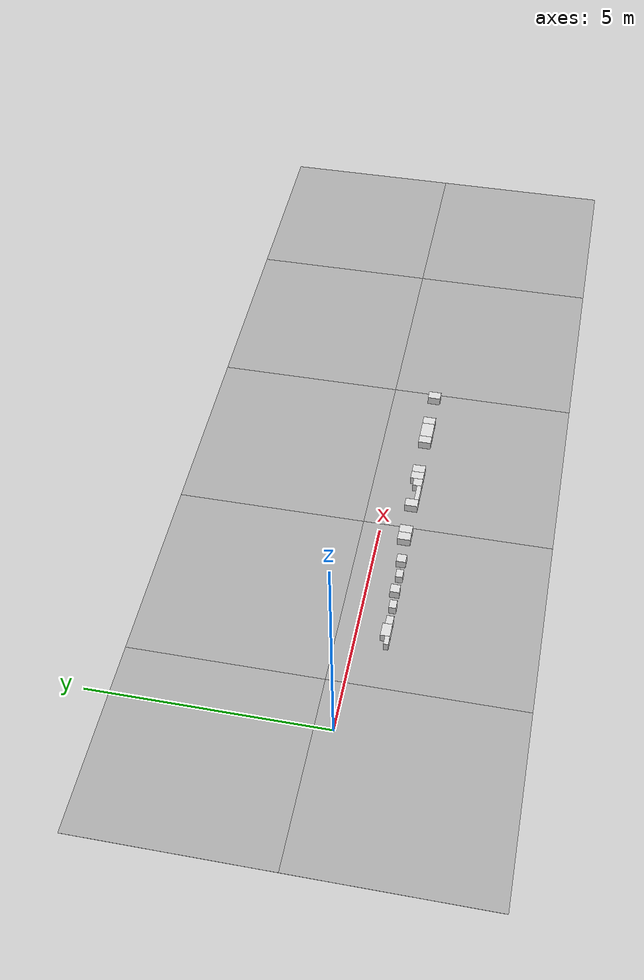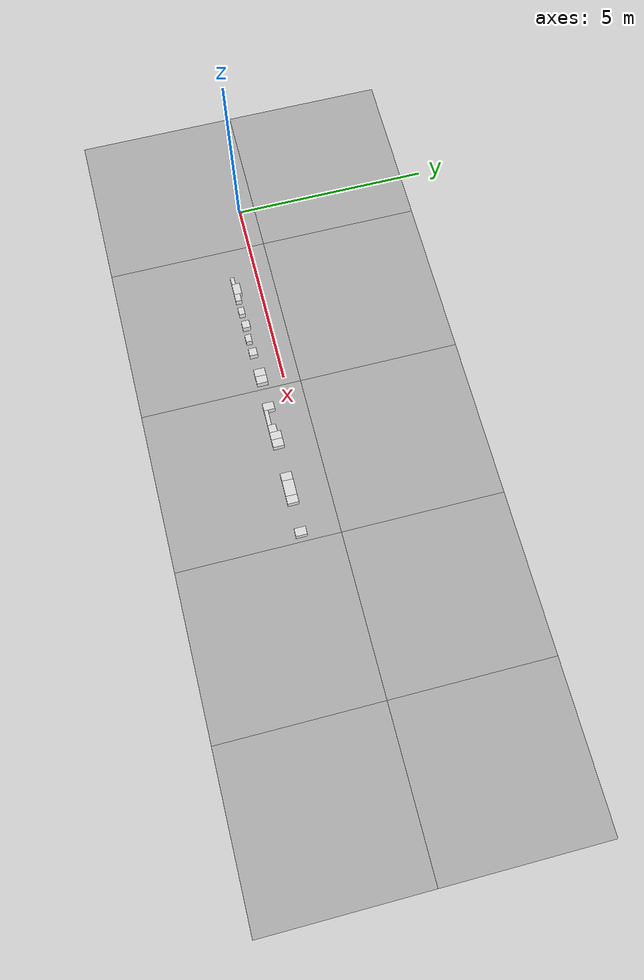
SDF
<sdf version="1.6">
 <world name="default">
  <model name="Tile/0-0">
   <static>1</static>
   <link name="link">
    <collision name="collision">
     <geometry><plane><normal>0 0 1</normal><size>4.096 4.096</size></plane></geometry>
     <surface><friction><ode><mu>100</mu><mu2>50</mu2></ode></friction></surface>
    </collision>
    <visual name="visual">
     <cast_shadows>0</cast_shadows>
     <geometry><plane><normal>0 0 1</normal><size>4.096 4.096</size></plane></geometry>
     <material>
      <script>
       <uri>file://materials/scripts</uri>
       <uri>file://materials/textures</uri>
       <name>Tile/aa44efc093d15b0d016b671cb8dad8b9b5925cd42bc6b331ef31decf4ba6863e</name>
      </script>
     </material>
    </visual>
   </link>
   <pose>-0.952 -1.6520000000000001 0 0 -0 0</pose>
  </model>
  <model name="Tile/0-1">
   <static>1</static>
   <link name="link">
    <collision name="collision">
     <geometry><plane><normal>0 0 1</normal><size>4.096 4.096</size></plane></geometry>
     <surface><friction><ode><mu>100</mu><mu2>50</mu2></ode></friction></surface>
    </collision>
    <visual name="visual">
     <cast_shadows>0</cast_shadows>
     <geometry><plane><normal>0 0 1</normal><size>4.096 4.096</size></plane></geometry>
     <material>
      <script>
       <uri>file://materials/scripts</uri>
       <uri>file://materials/textures</uri>
       <name>Tile/6681b896b1587d54cb69aadeb5fb7247b4d6d500490292053e67105ac88ca889</name>
      </script>
     </material>
    </visual>
   </link>
   <pose>-0.952 2.444 0 0 -0 0</pose>
  </model>
  <model name="Tile/1-0">
   <static>1</static>
   <link name="link">
    <collision name="collision">
     <geometry><plane><normal>0 0 1</normal><size>4.096 4.096</size></plane></geometry>
     <surface><friction><ode><mu>100</mu><mu2>50</mu2></ode></friction></surface>
    </collision>
    <visual name="visual">
     <cast_shadows>0</cast_shadows>
     <geometry><plane><normal>0 0 1</normal><size>4.096 4.096</size></plane></geometry>
     <material>
      <script>
       <uri>file://materials/scripts</uri>
       <uri>file://materials/textures</uri>
       <name>Tile/211000c55949827c1dbe08ef776d847ae6367f50a730efac53dbd94fc0bb5fd0</name>
      </script>
     </material>
    </visual>
   </link>
   <pose>3.144 -1.6520000000000001 0 0 -0 0</pose>
  </model>
  <model name="Tile/1-1">
   <static>1</static>
   <link name="link">
    <collision name="collision">
     <geometry><plane><normal>0 0 1</normal><size>4.096 4.096</size></plane></geometry>
     <surface><friction><ode><mu>100</mu><mu2>50</mu2></ode></friction></surface>
    </collision>
    <visual name="visual">
     <cast_shadows>0</cast_shadows>
     <geometry><plane><normal>0 0 1</normal><size>4.096 4.096</size></plane></geometry>
     <material>
      <script>
       <uri>file://materials/scripts</uri>
       <uri>file://materials/textures</uri>
       <name>Tile/13957a6de1f2afce18d7f1f64dacc2f21295e26ccf498256b0e1a51002cd5706</name>
      </script>
     </material>
    </visual>
   </link>
   <pose>3.144 2.444 0 0 -0 0</pose>
  </model>
  <model name="Tile/2-0">
   <static>1</static>
   <link name="link">
    <collision name="collision">
     <geometry><plane><normal>0 0 1</normal><size>4.096 4.096</size></plane></geometry>
     <surface><friction><ode><mu>100</mu><mu2>50</mu2></ode></friction></surface>
    </collision>
    <visual name="visual">
     <cast_shadows>0</cast_shadows>
     <geometry><plane><normal>0 0 1</normal><size>4.096 4.096</size></plane></geometry>
     <material>
      <script>
       <uri>file://materials/scripts</uri>
       <uri>file://materials/textures</uri>
       <name>Tile/14c6997e4ef2e1361540db81ecadd47c81aeaf3bcaa944e50438827b7d5f5a1a</name>
      </script>
     </material>
    </visual>
   </link>
   <pose>7.24 -1.6520000000000001 0 0 -0 0</pose>
  </model>
  <model name="Tile/2-1">
   <static>1</static>
   <link name="link">
    <collision name="collision">
     <geometry><plane><normal>0 0 1</normal><size>4.096 4.096</size></plane></geometry>
     <surface><friction><ode><mu>100</mu><mu2>50</mu2></ode></friction></surface>
    </collision>
    <visual name="visual">
     <cast_shadows>0</cast_shadows>
     <geometry><plane><normal>0 0 1</normal><size>4.096 4.096</size></plane></geometry>
     <material>
      <script>
       <uri>file://materials/scripts</uri>
       <uri>file://materials/textures</uri>
       <name>Tile/13957a6de1f2afce18d7f1f64dacc2f21295e26ccf498256b0e1a51002cd5706</name>
      </script>
     </material>
    </visual>
   </link>
   <pose>7.24 2.444 0 0 -0 0</pose>
  </model>
  <model name="Tile/3-0">
   <static>1</static>
   <link name="link">
    <collision name="collision">
     <geometry><plane><normal>0 0 1</normal><size>4.096 4.096</size></plane></geometry>
     <surface><friction><ode><mu>100</mu><mu2>50</mu2></ode></friction></surface>
    </collision>
    <visual name="visual">
     <cast_shadows>0</cast_shadows>
     <geometry><plane><normal>0 0 1</normal><size>4.096 4.096</size></plane></geometry>
     <material>
      <script>
       <uri>file://materials/scripts</uri>
       <uri>file://materials/textures</uri>
       <name>Tile/5b4b2667aebdeabff7465a80aab668c68c7da6f92cf121cc6637428caa494271</name>
      </script>
     </material>
    </visual>
   </link>
   <pose>11.336 -1.6520000000000001 0 0 -0 0</pose>
  </model>
  <model name="Tile/3-1">
   <static>1</static>
   <link name="link">
    <collision name="collision">
     <geometry><plane><normal>0 0 1</normal><size>4.096 4.096</size></plane></geometry>
     <surface><friction><ode><mu>100</mu><mu2>50</mu2></ode></friction></surface>
    </collision>
    <visual name="visual">
     <cast_shadows>0</cast_shadows>
     <geometry><plane><normal>0 0 1</normal><size>4.096 4.096</size></plane></geometry>
     <material>
      <script>
       <uri>file://materials/scripts</uri>
       <uri>file://materials/textures</uri>
       <name>Tile/6765d09d4b84ba0dc5b003d615d35327976c0d136b5748911226ea48ef82a4c5</name>
      </script>
     </material>
    </visual>
   </link>
   <pose>11.336 2.444 0 0 -0 0</pose>
  </model>
  <model name="Tile/4-0">
   <static>1</static>
   <link name="link">
    <collision name="collision">
     <geometry><plane><normal>0 0 1</normal><size>4.096 4.096</size></plane></geometry>
     <surface><friction><ode><mu>100</mu><mu2>50</mu2></ode></friction></surface>
    </collision>
    <visual name="visual">
     <cast_shadows>0</cast_shadows>
     <geometry><plane><normal>0 0 1</normal><size>4.096 4.096</size></plane></geometry>
     <material>
      <script>
       <uri>file://materials/scripts</uri>
       <uri>file://materials/textures</uri>
       <name>Tile/5eab350b8220ac9944dbdfa4ac3288c7c17e24c3bf5df0dfcf6173d64dae00a1</name>
      </script>
     </material>
    </visual>
   </link>
   <pose>15.431999999999999 -1.6520000000000001 0 0 -0 0</pose>
  </model>
  <model name="Tile/4-1">
   <static>1</static>
   <link name="link">
    <collision name="collision">
     <geometry><plane><normal>0 0 1</normal><size>4.096 4.096</size></plane></geometry>
     <surface><friction><ode><mu>100</mu><mu2>50</mu2></ode></friction></surface>
    </collision>
    <visual name="visual">
     <cast_shadows>0</cast_shadows>
     <geometry><plane><normal>0 0 1</normal><size>4.096 4.096</size></plane></geometry>
     <material>
      <script>
       <uri>file://materials/scripts</uri>
       <uri>file://materials/textures</uri>
       <name>Tile/5eab350b8220ac9944dbdfa4ac3288c7c17e24c3bf5df0dfcf6173d64dae00a1</name>
      </script>
     </material>
    </visual>
   </link>
   <pose>15.431999999999999 2.444 0 0 -0 0</pose>
  </model>
  <model name="Obstacle/-5/0">
   <pose>2.1 -0.6499999999999999 0.1 0 0 -0.0</pose>
   <link name="link">
    <inertial>
     <mass>10</mass>
     <inertia>
      <ixx>0.166667</ixx>
      <ixy>0</ixy>
      <ixz>0</ixz>
      <iyy>0.166667</iyy>
      <iyz>0</iyz>
      <izz>0.166667</izz>
     </inertia>
    </inertial>
    <collision name="collision"><geometry><box><size>0.2 0.1 0.2</size></box></geometry></collision>
    <visual name="visual">
     <geometry><box><size>0.2 0.1 0.2</size></box></geometry>
     <material>
      <script><name>Gazebo/White</name><uri>file://media/materials/scripts/gazebo.material</uri></script>
     </material>
    </visual>
   </link>
  </model>
  <model name="Obstacle/-9/0">
   <pose>2.35 -0.6 0.1 0 0 -0.0</pose>
   <link name="link">
    <inertial>
     <mass>10</mass>
     <inertia>
      <ixx>0.166667</ixx>
      <ixy>0</ixy>
      <ixz>0</ixz>
      <iyy>0.166667</iyy>
      <iyz>0</iyz>
      <izz>0.166667</izz>
     </inertia>
    </inertial>
    <collision name="collision"><geometry><box><size>0.3 0.2 0.2</size></box></geometry></collision>
    <visual name="visual">
     <geometry><box><size>0.3 0.2 0.2</size></box></geometry>
     <material>
      <script><name>Gazebo/White</name><uri>file://media/materials/scripts/gazebo.material</uri></script>
     </material>
    </visual>
   </link>
  </model>
  <model name="Obstacle/-13/0">
   <pose>2.6 -0.625 0.1 0 0 -0.0</pose>
   <link name="link">
    <inertial>
     <mass>10</mass>
     <inertia>
      <ixx>0.166667</ixx>
      <ixy>0</ixy>
      <ixz>0</ixz>
      <iyy>0.166667</iyy>
      <iyz>0</iyz>
      <izz>0.166667</izz>
     </inertia>
    </inertial>
    <collision name="collision"><geometry><box><size>0.2 0.15 0.2</size></box></geometry></collision>
    <visual name="visual">
     <geometry><box><size>0.2 0.15 0.2</size></box></geometry>
     <material>
      <script><name>Gazebo/White</name><uri>file://media/materials/scripts/gazebo.material</uri></script>
     </material>
    </visual>
   </link>
  </model>
  <model name="Obstacle/-20/0">
   <pose>3.0000000000000004 -0.625 0.1 0 0 -0.0</pose>
   <link name="link">
    <inertial>
     <mass>10</mass>
     <inertia>
      <ixx>0.166667</ixx>
      <ixy>0</ixy>
      <ixz>0</ixz>
      <iyy>0.166667</iyy>
      <iyz>0</iyz>
      <izz>0.166667</izz>
     </inertia>
    </inertial>
    <collision name="collision"><geometry><box><size>0.2 0.15 0.2</size></box></geometry></collision>
    <visual name="visual">
     <geometry><box><size>0.2 0.15 0.2</size></box></geometry>
     <material>
      <script><name>Gazebo/White</name><uri>file://media/materials/scripts/gazebo.material</uri></script>
     </material>
    </visual>
   </link>
  </model>
  <model name="Obstacle/-27/0">
   <pose>3.400000000000001 -0.6 0.1 0 0 -0.0</pose>
   <link name="link">
    <inertial>
     <mass>10</mass>
     <inertia>
      <ixx>0.166667</ixx>
      <ixy>0</ixy>
      <ixz>0</ixz>
      <iyy>0.166667</iyy>
      <iyz>0</iyz>
      <izz>0.166667</izz>
     </inertia>
    </inertial>
    <collision name="collision"><geometry><box><size>0.2 0.2 0.2</size></box></geometry></collision>
    <visual name="visual">
     <geometry><box><size>0.2 0.2 0.2</size></box></geometry>
     <material>
      <script><name>Gazebo/White</name><uri>file://media/materials/scripts/gazebo.material</uri></script>
     </material>
    </visual>
   </link>
  </model>
  <model name="Obstacle/-34/0">
   <pose>3.800000000000001 -0.625 0.1 0 0 -0.0</pose>
   <link name="link">
    <inertial>
     <mass>10</mass>
     <inertia>
      <ixx>0.166667</ixx>
      <ixy>0</ixy>
      <ixz>0</ixz>
      <iyy>0.166667</iyy>
      <iyz>0</iyz>
      <izz>0.166667</izz>
     </inertia>
    </inertial>
    <collision name="collision"><geometry><box><size>0.2 0.15 0.2</size></box></geometry></collision>
    <visual name="visual">
     <geometry><box><size>0.2 0.15 0.2</size></box></geometry>
     <material>
      <script><name>Gazebo/White</name><uri>file://media/materials/scripts/gazebo.material</uri></script>
     </material>
    </visual>
   </link>
  </model>
  <model name="Obstacle/-41/0">
   <pose>4.200000000000001 -0.6 0.1 0 0 -0.0</pose>
   <link name="link">
    <inertial>
     <mass>10</mass>
     <inertia>
      <ixx>0.166667</ixx>
      <ixy>0</ixy>
      <ixz>0</ixz>
      <iyy>0.166667</iyy>
      <iyz>0</iyz>
      <izz>0.166667</izz>
     </inertia>
    </inertial>
    <collision name="collision"><geometry><box><size>0.2 0.2 0.2</size></box></geometry></collision>
    <visual name="visual">
     <geometry><box><size>0.2 0.2 0.2</size></box></geometry>
     <material>
      <script><name>Gazebo/White</name><uri>file://media/materials/scripts/gazebo.material</uri></script>
     </material>
    </visual>
   </link>
  </model>
  <model name="Obstacle/-48/0">
   <pose>4.800000000000002 -0.5599999999999999 0.1 0 0 -0.0</pose>
   <link name="link">
    <inertial>
     <mass>10</mass>
     <inertia>
      <ixx>0.166667</ixx>
      <ixy>0</ixy>
      <ixz>0</ixz>
      <iyy>0.166667</iyy>
      <iyz>0</iyz>
      <izz>0.166667</izz>
     </inertia>
    </inertial>
    <collision name="collision"><geometry><box><size>0.2 0.28 0.2</size></box></geometry></collision>
    <visual name="visual">
     <geometry><box><size>0.2 0.28 0.2</size></box></geometry>
     <material>
      <script><name>Gazebo/White</name><uri>file://media/materials/scripts/gazebo.material</uri></script>
     </material>
    </visual>
   </link>
  </model>
  <model name="Obstacle/-52/0">
   <pose>5.000000000000002 -0.5599999999999999 0.1 0 0 -0.0</pose>
   <link name="link">
    <inertial>
     <mass>10</mass>
     <inertia>
      <ixx>0.166667</ixx>
      <ixy>0</ixy>
      <ixz>0</ixz>
      <iyy>0.166667</iyy>
      <iyz>0</iyz>
      <izz>0.166667</izz>
     </inertia>
    </inertial>
    <collision name="collision"><geometry><box><size>0.2 0.28 0.2</size></box></geometry></collision>
    <visual name="visual">
     <geometry><box><size>0.2 0.28 0.2</size></box></geometry>
     <material>
      <script><name>Gazebo/White</name><uri>file://media/materials/scripts/gazebo.material</uri></script>
     </material>
    </visual>
   </link>
  </model>
  <model name="Obstacle/-59/0">
   <pose>5.750000000000002 -0.5599999999999999 0.1 0 0 -0.0</pose>
   <link name="link">
    <inertial>
     <mass>10</mass>
     <inertia>
      <ixx>0.166667</ixx>
      <ixy>0</ixy>
      <ixz>0</ixz>
      <iyy>0.166667</iyy>
      <iyz>0</iyz>
      <izz>0.166667</izz>
     </inertia>
    </inertial>
    <collision name="collision"><geometry><box><size>0.2 0.28 0.2</size></box></geometry></collision>
    <visual name="visual">
     <geometry><box><size>0.2 0.28 0.2</size></box></geometry>
     <material>
      <script><name>Gazebo/White</name><uri>file://media/materials/scripts/gazebo.material</uri></script>
     </material>
    </visual>
   </link>
  </model>
  <model name="Obstacle/-63/0">
   <pose>6.0500000000000025 -0.6499999999999999 0.1 0 0 -0.0</pose>
   <link name="link">
    <inertial>
     <mass>10</mass>
     <inertia>
      <ixx>0.166667</ixx>
      <ixy>0</ixy>
      <ixz>0</ixz>
      <iyy>0.166667</iyy>
      <iyz>0</iyz>
      <izz>0.166667</izz>
     </inertia>
    </inertial>
    <collision name="collision"><geometry><box><size>0.4 0.1 0.2</size></box></geometry></collision>
    <visual name="visual">
     <geometry><box><size>0.4 0.1 0.2</size></box></geometry>
     <material>
      <script><name>Gazebo/White</name><uri>file://media/materials/scripts/gazebo.material</uri></script>
     </material>
    </visual>
   </link>
  </model>
  <model name="Obstacle/-67/0">
   <pose>6.350000000000002 -0.6 0.1 0 0 -0.0</pose>
   <link name="link">
    <inertial>
     <mass>10</mass>
     <inertia>
      <ixx>0.166667</ixx>
      <ixy>0</ixy>
      <ixz>0</ixz>
      <iyy>0.166667</iyy>
      <iyz>0</iyz>
      <izz>0.166667</izz>
     </inertia>
    </inertial>
    <collision name="collision"><geometry><box><size>0.2 0.2 0.2</size></box></geometry></collision>
    <visual name="visual">
     <geometry><box><size>0.2 0.2 0.2</size></box></geometry>
     <material>
      <script><name>Gazebo/White</name><uri>file://media/materials/scripts/gazebo.material</uri></script>
     </material>
    </visual>
   </link>
  </model>
  <model name="Obstacle/-71/0">
   <pose>6.5500000000000025 -0.5599999999999999 0.1 0 0 -0.0</pose>
   <link name="link">
    <inertial>
     <mass>10</mass>
     <inertia>
      <ixx>0.166667</ixx>
      <ixy>0</ixy>
      <ixz>0</ixz>
      <iyy>0.166667</iyy>
      <iyz>0</iyz>
      <izz>0.166667</izz>
     </inertia>
    </inertial>
    <collision name="collision"><geometry><box><size>0.2 0.28 0.2</size></box></geometry></collision>
    <visual name="visual">
     <geometry><box><size>0.2 0.28 0.2</size></box></geometry>
     <material>
      <script><name>Gazebo/White</name><uri>file://media/materials/scripts/gazebo.material</uri></script>
     </material>
    </visual>
   </link>
  </model>
  <model name="Obstacle/-75/0">
   <pose>6.750000000000003 -0.5599999999999999 0.1 0 0 -0.0</pose>
   <link name="link">
    <inertial>
     <mass>10</mass>
     <inertia>
      <ixx>0.166667</ixx>
      <ixy>0</ixy>
      <ixz>0</ixz>
      <iyy>0.166667</iyy>
      <iyz>0</iyz>
      <izz>0.166667</izz>
     </inertia>
    </inertial>
    <collision name="collision"><geometry><box><size>0.2 0.28 0.2</size></box></geometry></collision>
    <visual name="visual">
     <geometry><box><size>0.2 0.28 0.2</size></box></geometry>
     <material>
      <script><name>Gazebo/White</name><uri>file://media/materials/scripts/gazebo.material</uri></script>
     </material>
    </visual>
   </link>
  </model>
  <model name="Obstacle/-82/0">
   <pose>7.650000000000003 -0.5599999999999999 0.1 0 0 -0.0</pose>
   <link name="link">
    <inertial>
     <mass>10</mass>
     <inertia>
      <ixx>0.166667</ixx>
      <ixy>0</ixy>
      <ixz>0</ixz>
      <iyy>0.166667</iyy>
      <iyz>0</iyz>
      <izz>0.166667</izz>
     </inertia>
    </inertial>
    <collision name="collision"><geometry><box><size>0.2 0.28 0.2</size></box></geometry></collision>
    <visual name="visual">
     <geometry><box><size>0.2 0.28 0.2</size></box></geometry>
     <material>
      <script><name>Gazebo/White</name><uri>file://media/materials/scripts/gazebo.material</uri></script>
     </material>
    </visual>
   </link>
  </model>
  <model name="Obstacle/-86/0">
   <pose>7.950000000000004 -0.5599999999999999 0.1 0 0 -0.0</pose>
   <link name="link">
    <inertial>
     <mass>10</mass>
     <inertia>
      <ixx>0.166667</ixx>
      <ixy>0</ixy>
      <ixz>0</ixz>
      <iyy>0.166667</iyy>
      <iyz>0</iyz>
      <izz>0.166667</izz>
     </inertia>
    </inertial>
    <collision name="collision"><geometry><box><size>0.4 0.28 0.2</size></box></geometry></collision>
    <visual name="visual">
     <geometry><box><size>0.4 0.28 0.2</size></box></geometry>
     <material>
      <script><name>Gazebo/White</name><uri>file://media/materials/scripts/gazebo.material</uri></script>
     </material>
    </visual>
   </link>
  </model>
  <model name="Obstacle/-90/0">
   <pose>8.250000000000004 -0.5599999999999999 0.1 0 0 -0.0</pose>
   <link name="link">
    <inertial>
     <mass>10</mass>
     <inertia>
      <ixx>0.166667</ixx>
      <ixy>0</ixy>
      <ixz>0</ixz>
      <iyy>0.166667</iyy>
      <iyz>0</iyz>
      <izz>0.166667</izz>
     </inertia>
    </inertial>
    <collision name="collision"><geometry><box><size>0.2 0.28 0.2</size></box></geometry></collision>
    <visual name="visual">
     <geometry><box><size>0.2 0.28 0.2</size></box></geometry>
     <material>
      <script><name>Gazebo/White</name><uri>file://media/materials/scripts/gazebo.material</uri></script>
     </material>
    </visual>
   </link>
  </model>
  <model name="Obstacle/-97/0">
   <pose>9.080000000000004 -0.5599999999999999 0.1 0 0 -0.0</pose>
   <link name="link">
    <inertial>
     <mass>10</mass>
     <inertia>
      <ixx>0.166667</ixx>
      <ixy>0</ixy>
      <ixz>0</ixz>
      <iyy>0.166667</iyy>
      <iyz>0</iyz>
      <izz>0.166667</izz>
     </inertia>
    </inertial>
    <collision name="collision"><geometry><box><size>0.2 0.28 0.2</size></box></geometry></collision>
    <visual name="visual">
     <geometry><box><size>0.2 0.28 0.2</size></box></geometry>
     <material>
      <script><name>Gazebo/White</name><uri>file://media/materials/scripts/gazebo.material</uri></script>
     </material>
    </visual>
   </link>
  </model>
 </world>
</sdf>
